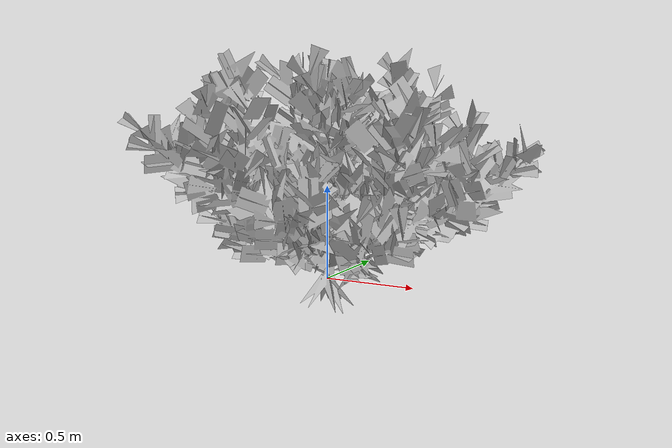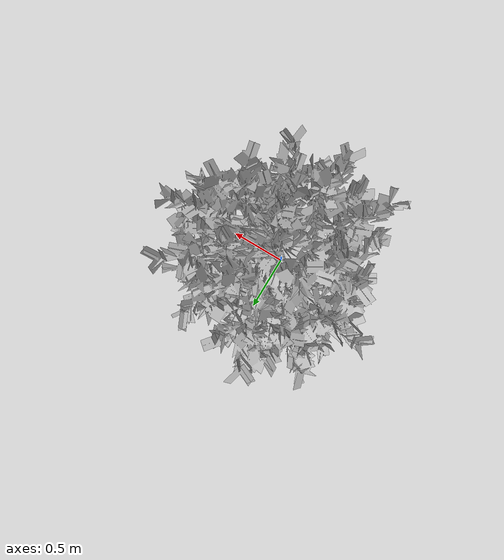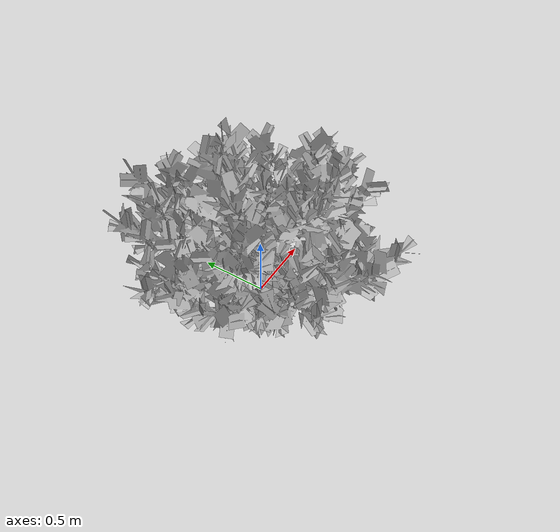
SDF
<?xml version="1.0" ?>
<sdf version="1.6">
  <model name="bush2">
    <static>1</static>
    <link name="link">

      <visual name="branch">
        <geometry>
          <mesh>
            <uri>model://bush2/meshes/OC29_2.obj</uri>
          </mesh>
        </geometry>

        <cast_shadows>1</cast_shadows>
      </visual>
    </link>
  </model>
</sdf>
